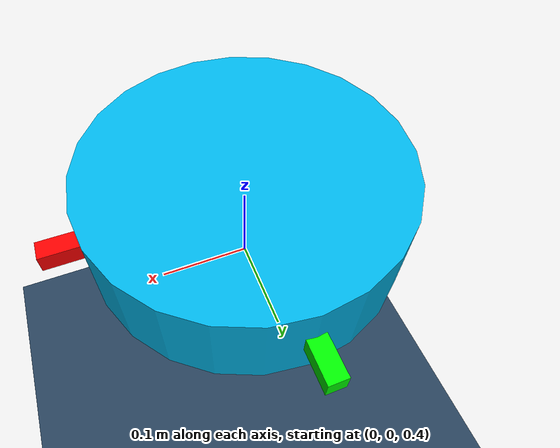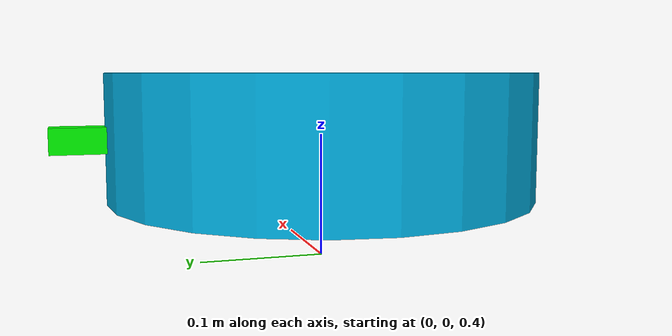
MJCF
<mujoco model="quadrotor_system">
  <option gravity="0 0 -9.81" timestep="0.002"/>

  <asset>
    <texture name="grid" type="2d" builtin="checker" rgb1=".1 .2 .3" rgb2=".2 .3 .4" width="300" height="300"/>
    <material name="grid_mat" texture="grid" texrepeat="10 10"/>
  </asset>

  <worldbody>
    <light pos="0 0 10" dir="0 0 -1"/>
    <geom type="plane" size="10 10 0.1" material="grid_mat"/>

    <body name="drone" pos="0 0 0.5">
      <freejoint name="drone_joint"/>
      <inertial pos="0 0 0" mass="1.0" diaginertia="0.005 0.005 0.01"/>
      <geom name="drone_geom" type="cylinder" size="0.17 0.05" rgba="0 0.7 0.9 1" mass="1.0"/>

      <site name="attachment_a" pos="0 0 0" size="0.02" rgba="1 1 0 1"/>

      <site name="forward_marker" type="box" pos="0.17 0 0" size="0.04 0.01 0.01" rgba="1 0 0 1"/>
      <site name="left_marker" type="box" pos="0 0.17 0" size="0.01 0.04 0.01" rgba="0 1 0 1"/>
    </body>
  </worldbody>

  <actuator>
      <motor name="thrust" site="attachment_a" gear="0 0 1 0 0 0"/>
      <motor name="roll"   site="attachment_a" gear="0 0 0 1 0 0"/>
      <motor name="pitch"  site="attachment_a" gear="0 0 0 0 1 0"/>
      <motor name="yaw"    site="attachment_a" gear="0 0 0 0 0 1"/>
  </actuator>
</mujoco>
